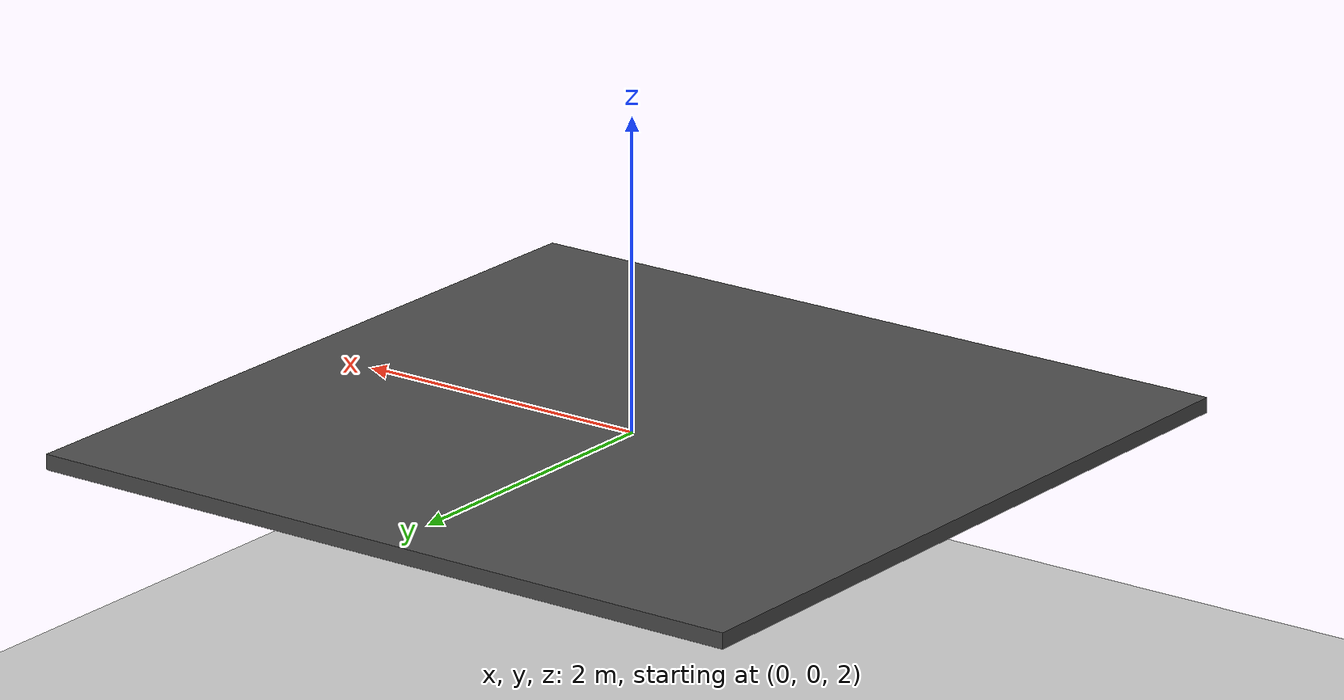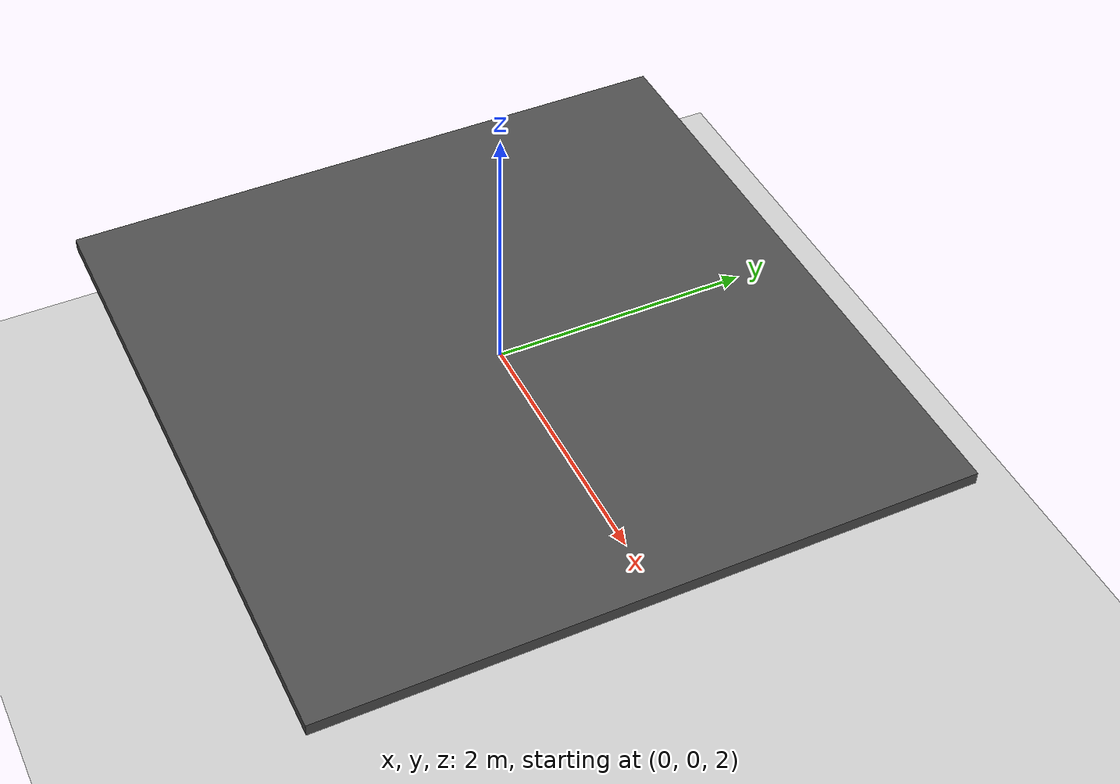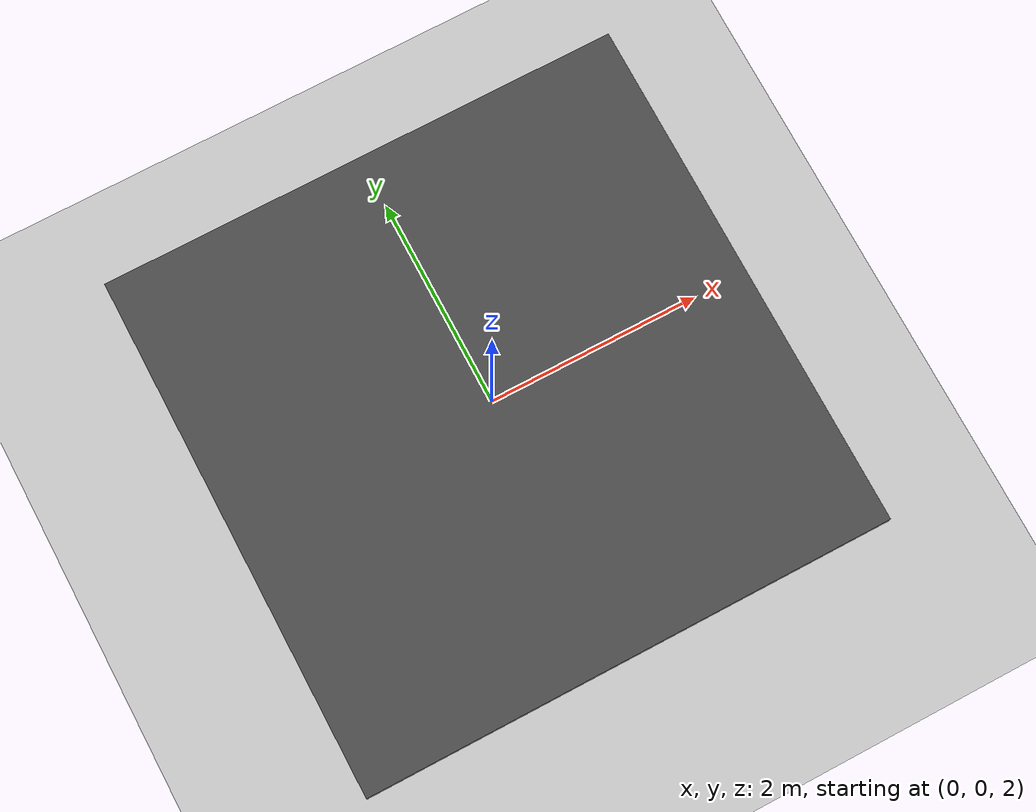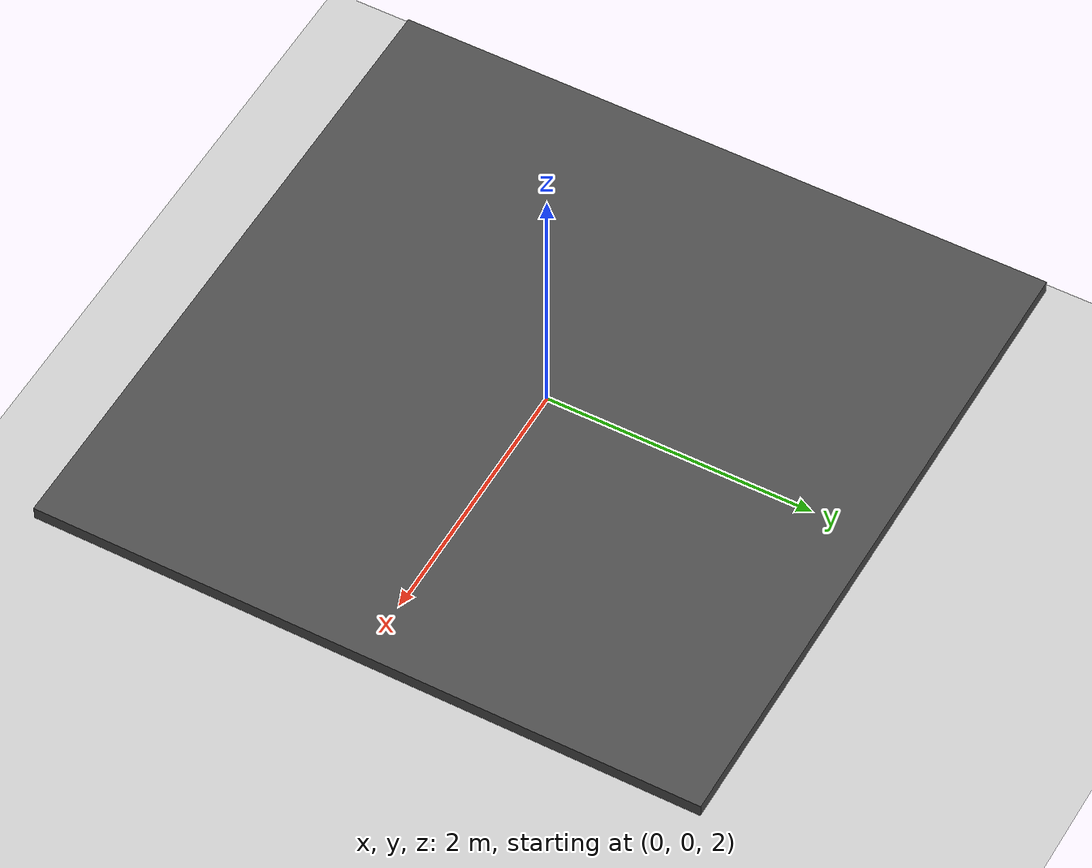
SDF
<?xml version="1.0" encoding="UTF-8"?>
<sdf version="1.6">
  <world name="moving_platform">
    <physics type="ode">
      <max_step_size>0.004</max_step_size>
      <real_time_factor>1.0</real_time_factor>
      <real_time_update_rate>250</real_time_update_rate>
    </physics>
    <gravity>0 0 -9.8</gravity>
    <magnetic_field>6e-06 2.3e-05 -4.2e-05</magnetic_field>
    <atmosphere type="adiabatic"/>
    <scene>
      <grid>false</grid>
      <ambient>0.4 0.4 0.4 1</ambient>
      <background>0.7 0.7 0.7 1</background>
      <shadows>true</shadows>
    </scene>
    <model name="ground_plane">
      <static>true</static>
      <link name="link">
        <collision name="collision">
          <geometry>
            <plane>
              <normal>0 0 1</normal>
              <size>1 1</size>
            </plane>
          </geometry>
          <surface>
            <friction>
              <ode/>
            </friction>
            <bounce/>
            <contact/>
          </surface>
        </collision>
        <visual name="visual">
          <geometry>
            <plane>
              <normal>0 0 1</normal>
              <size>500 500</size>
            </plane>
          </geometry>
          <material>
            <ambient>0.8 0.8 0.8 1</ambient>
            <diffuse>0.8 0.8 0.8 1</diffuse>
            <specular>0.8 0.8 0.8 1</specular>
          </material>
        </visual>
        <pose>0 0 0 0 -0 0</pose>
        <inertial>
          <pose>0 0 0 0 -0 0</pose>
          <mass>1</mass>
          <inertia>
            <ixx>1</ixx>
            <ixy>0</ixy>
            <ixz>0</ixz>
            <iyy>1</iyy>
            <iyz>0</iyz>
            <izz>1</izz>
          </inertia>
        </inertial>
        <enable_wind>false</enable_wind>
      </link>
      <pose>0 0 0 0 -0 0</pose>
      <self_collide>false</self_collide>
    </model>
    <include>
      <uri>model://moving_platform</uri>
    </include>
    <light name="sunUTC" type="directional">
      <pose>0 0 500 0 -0 0</pose>
      <cast_shadows>true</cast_shadows>
      <intensity>1</intensity>
      <direction>0.001 0.625 -0.78</direction>
      <diffuse>0.904 0.904 0.904 1</diffuse>
      <specular>0.271 0.271 0.271 1</specular>
      <attenuation>
        <range>2000</range>
        <linear>0</linear>
        <constant>1</constant>
        <quadratic>0</quadratic>
      </attenuation>
      <spot>
        <inner_angle>0</inner_angle>
        <outer_angle>0</outer_angle>
        <falloff>0</falloff>
      </spot>
    </light>
    <spherical_coordinates>
      <surface_model>EARTH_WGS84</surface_model>
      <world_frame_orientation>ENU</world_frame_orientation>
      <latitude_deg>47.397971057728974</latitude_deg>
      <longitude_deg> 8.546163739800146</longitude_deg>
      <elevation>0</elevation>
    </spherical_coordinates>
  </world>
</sdf>

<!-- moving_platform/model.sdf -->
<sdf version="1.6">
  <model name="moving_platform">
    <static>false</static>
    <allow_auto_disable>false</allow_auto_disable>

    <link name="platform_link">
      <gravity>false</gravity>
      <pose>0 0 2 0 0 0</pose>

      <inertial>
        <mass>10000</mass>
        <inertia>
          <ixx>10000</ixx>
          <ixy>0</ixy>
          <ixz>0</ixz>
          <iyy>10000</iyy>
          <iyz>0</iyz>
          <izz>10000</izz>
        </inertia>
      </inertial>

      <visual name="platform_visual">
        <geometry>
          <box>
            <size>5 5 0.1</size>
          </box>
        </geometry>
        <material>
          <ambient>0.3 0.3 0.3 1</ambient>
          <diffuse>0.3 0.3 0.3 1</diffuse>
          <specular>0.1 0.1 0.1 1</specular>
        </material>
      </visual>

      <collision name="platform_collision">
        <geometry>
          <box>
            <size>5 5 0.1</size>
          </box>
        </geometry>
      </collision>

      <sensor name="navsat_sensor" type="navsat">
        <always_on>1</always_on>
        <update_rate>30</update_rate>
      </sensor>

      <sensor name="imu_sensor" type="imu">
        <always_on>1</always_on>
        <update_rate>30</update_rate>
      </sensor>
    </link>

    <plugin filename="libMovingPlatformController.so" name="moving_platform_controller">
      <axis>x</axis>
      <amplitude>4.0</amplitude>
      <omega>0.25</omega>
      <z_offset>0.0</z_offset>
    </plugin>
  </model>
</sdf>
